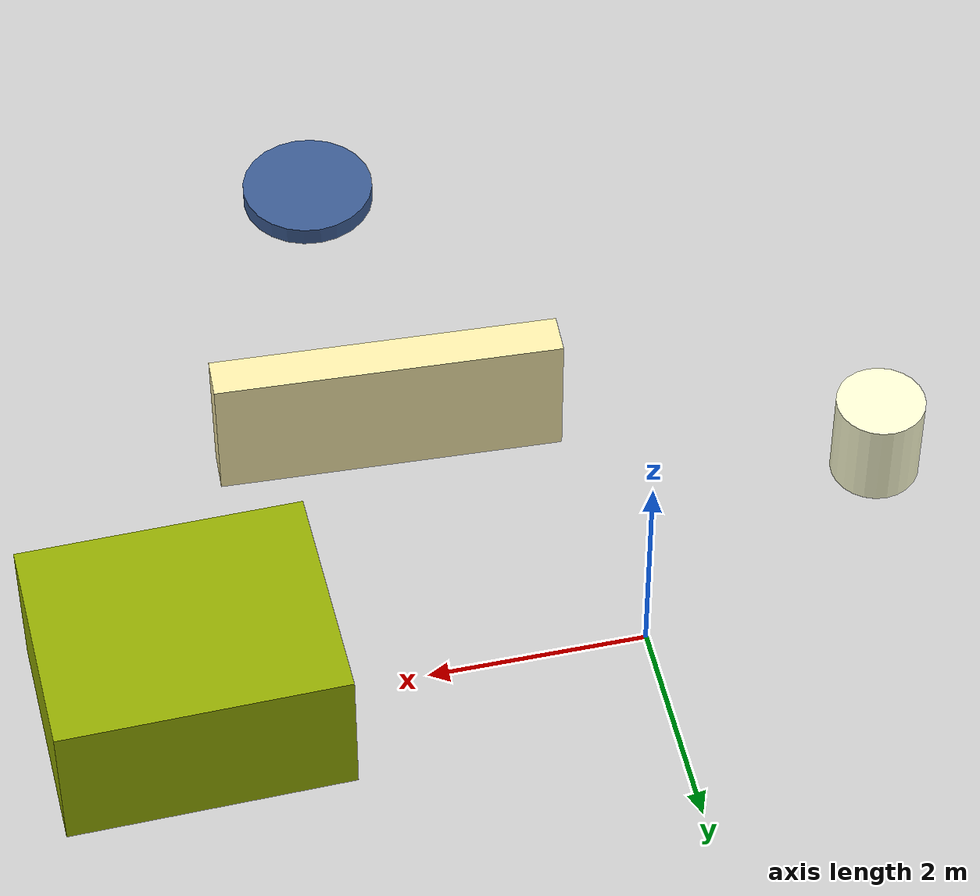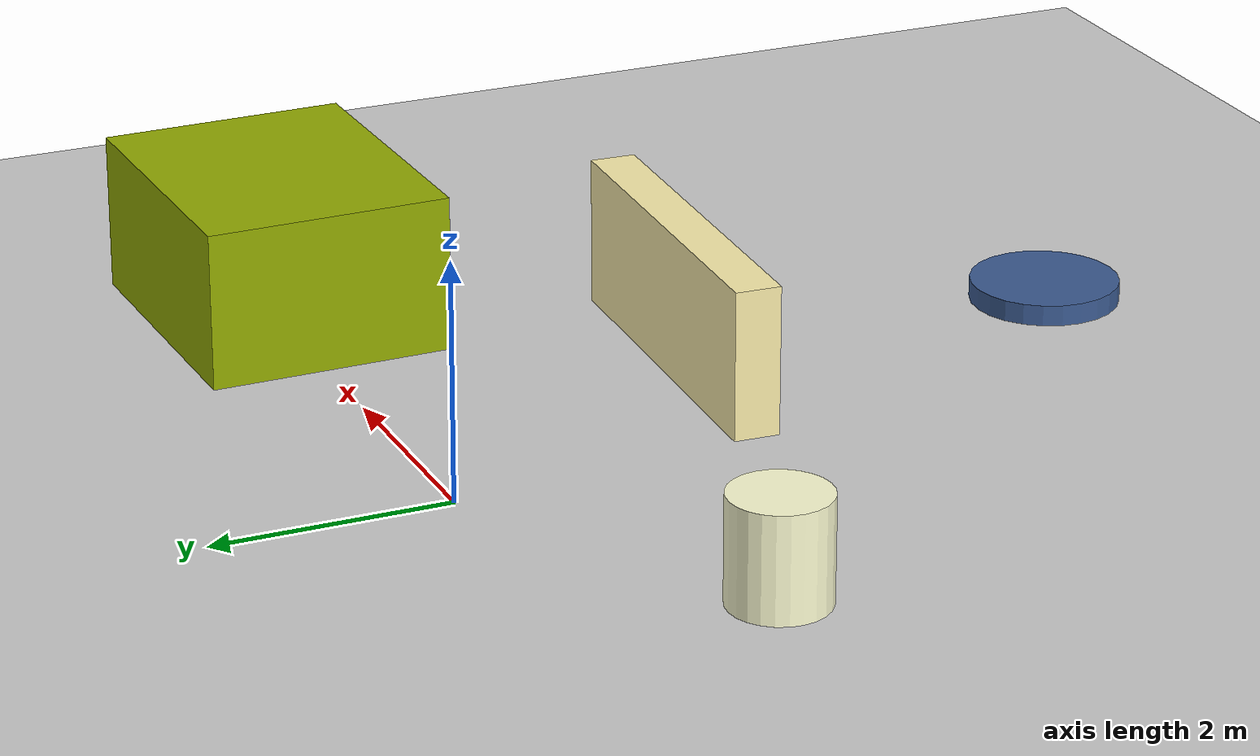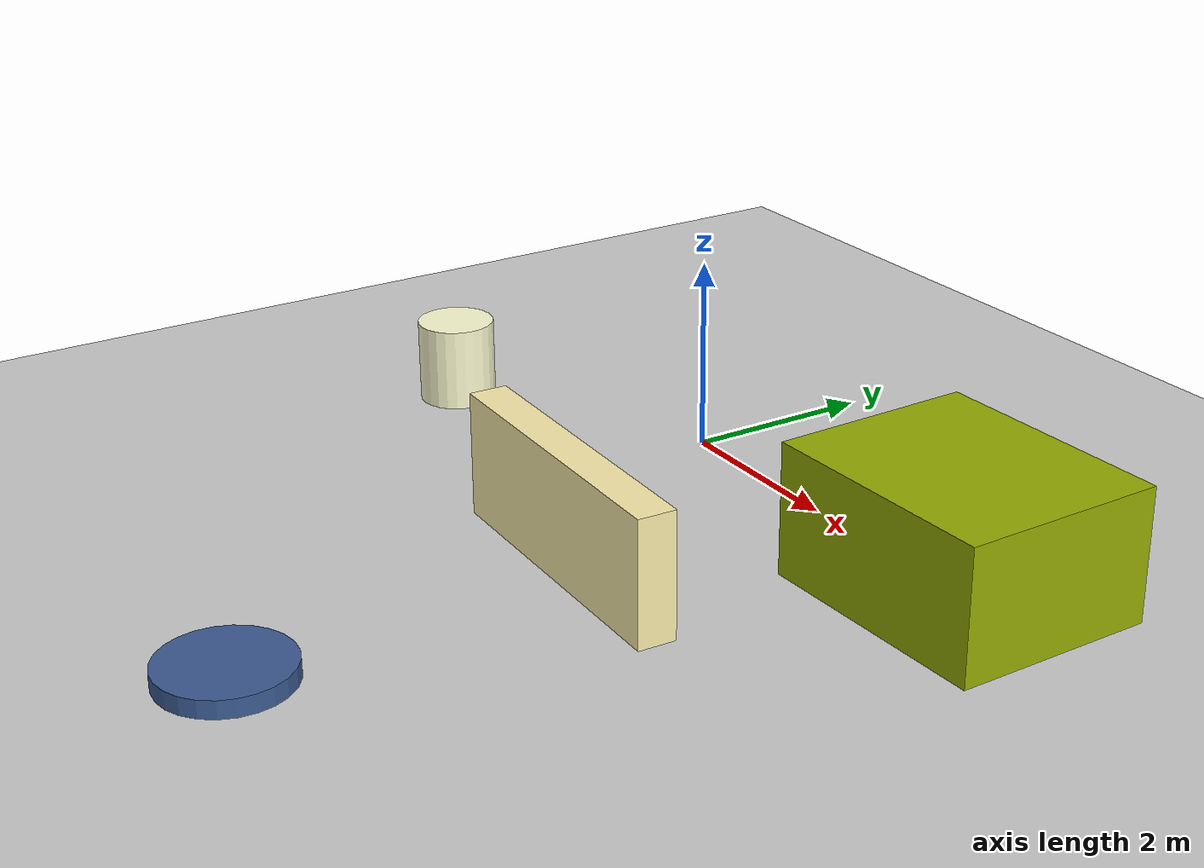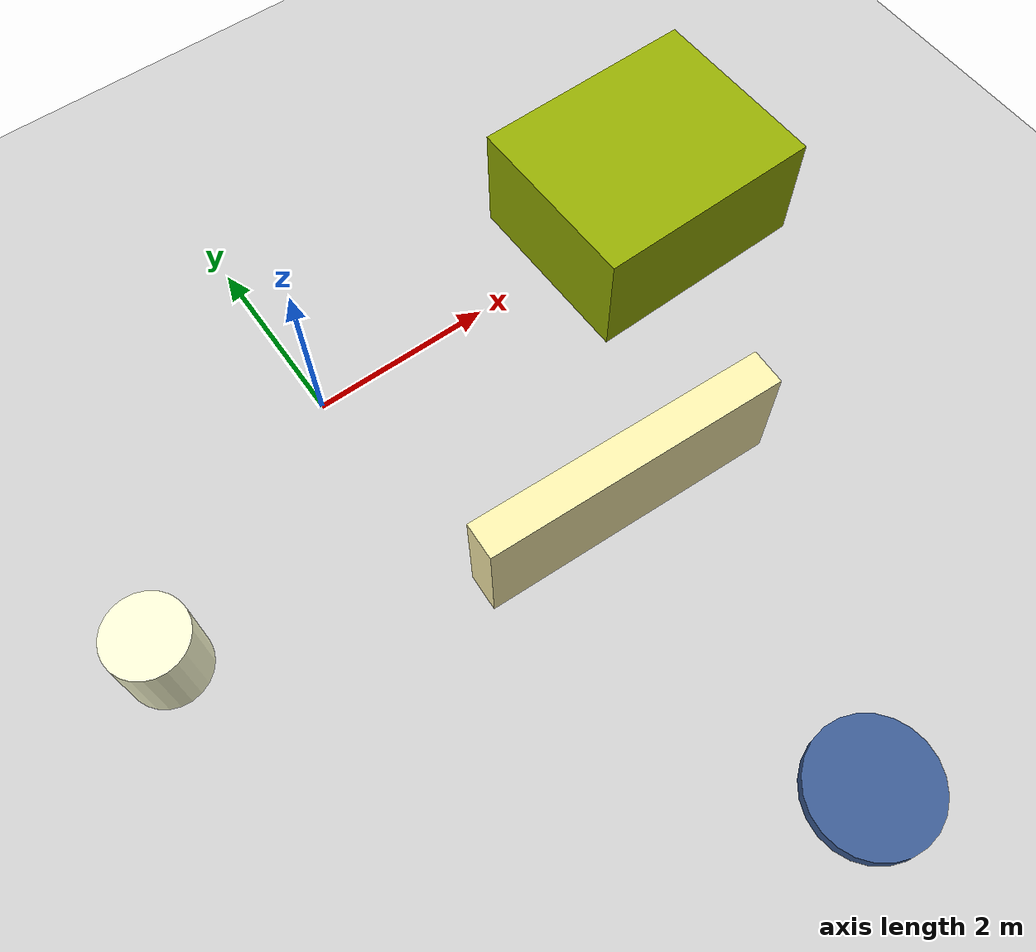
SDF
<sdf version="1.6">
 <world name="default">
  <atmosphere type="adiabatic"/>
  <wind><linear_velocity>0 0 0</linear_velocity></wind>
  <gravity>0 0 -9.8</gravity>
  <model name="static_cylinder">
   <pose>-2.5834 -1.53898 0.443668 0 -0 2.11117</pose>
   <static>1</static>
   <allow_auto_disable>0</allow_auto_disable>
   <link name="link">
    <collision name="collision">
     <geometry>
      <cylinder><radius>0.41374746275261365</radius><length>0.8873368733152909</length></cylinder>
     </geometry>
     <max_contacts>20</max_contacts>
    </collision>
    <visual name="visual">
     <geometry>
      <cylinder><radius>0.41374746275261365</radius><length>0.8873368733152909</length></cylinder>
     </geometry>
     <material><ambient>1 1 0.831373 1</ambient><diffuse>1.0 1.0 0.8313725490196079 1</diffuse></material>
     <transparency>0.0</transparency>
    </visual>
   </link>
  </model>
  <model name="static_cylinder_1">
   <pose>1.90024 -6.18633 0.0902866 0 -0 0.279727</pose>
   <static>1</static>
   <allow_auto_disable>0</allow_auto_disable>
   <link name="link">
    <collision name="collision">
     <geometry>
      <cylinder><radius>0.6428341222340863</radius><length>0.1805731601505487</length></cylinder>
     </geometry>
     <max_contacts>20</max_contacts>
    </collision>
    <visual name="visual">
     <geometry>
      <cylinder><radius>0.6428341222340863</radius><length>0.1805731601505487</length></cylinder>
     </geometry>
     <material>
      <ambient>0.231373 0.356863 0.572549 1</ambient>
      <diffuse>0.23137254901960785 0.3568627450980392 0.5725490196078431 1</diffuse>
     </material>
     <transparency>0.0</transparency>
    </visual>
   </link>
  </model>
  <model name="dyn_box">
   <pose>1.78987 -2.73143 0.636431 0 0 -1.61522</pose>
   <static>0</static>
   <allow_auto_disable>0</allow_auto_disable>
   <link name="link">
    <collision name="collision">
     <geometry><box><size>0.389059 3.21932 1.27286</size></box></geometry>
     <max_contacts>20</max_contacts>
    </collision>
    <visual name="visual">
     <geometry><box><size>0.389059 3.21932 1.27286</size></box></geometry>
     <material>
      <ambient>0.984314 0.933333 0.67451 1</ambient>
      <diffuse>0.984313725490196 0.9333333333333333 0.6745098039215687 1</diffuse>
     </material>
     <transparency>0.0</transparency>
    </visual>
    <inertial>
     <inertia>
      <ixx>0.29553975722098336</ixx>
      <iyy>0.04368780413980541</iyy>
      <izz>0.25931762518954066</izz>
      <ixy>0.0</ixy>
      <ixz>0.0</ixz>
      <iyz>0.0</iyz>
     </inertia>
     <mass>0.2959300542624286</mass>
    </inertial>
   </link>
  </model>
  <model name="dyn_box_1">
   <pose>4.1349 -0.0327248 0.67259 0 0 -1.55063</pose>
   <static>0</static>
   <allow_auto_disable>0</allow_auto_disable>
   <link name="link">
    <collision name="collision">
     <geometry><box><size>2.10452 2.56806 1.34518</size></box></geometry>
     <max_contacts>20</max_contacts>
    </collision>
    <visual name="visual">
     <geometry><box><size>2.10452 2.56806 1.34518</size></box></geometry>
     <material>
      <ambient>0.580392 0.67451 0.00784314 1</ambient>
      <diffuse>0.5803921568627451 0.6745098039215687 0.00784313725490196 1</diffuse>
     </material>
     <transparency>0.0</transparency>
    </visual>
    <inertial>
     <inertia>
      <ixx>0.45319779184846687</ixx>
      <iyy>0.3364035666868663</iyy>
      <izz>0.5944506450680117</izz>
      <ixy>0.0</ixy>
      <ixz>0.0</ixz>
      <iyz>0.0</iyz>
     </inertia>
     <mass>0.6470841999928039</mass>
    </inertial>
   </link>
  </model>
  <include><uri>model://ground_plane</uri><name>ground_plane</name><static>1</static></include>
  <include><uri>model://sun</uri></include>
  <physics name="default_physics" default="0" type="ode">
   <gravity>0 0 -9.8066</gravity>
   <ode>
    <solver>
     <type>quick</type>
     <iters>10</iters>
     <sor>1.3</sor>
     <use_dynamic_moi_rescaling>0</use_dynamic_moi_rescaling>
    </solver>
    <constraints>
     <cfm>0</cfm>
     <erp>0.2</erp>
     <contact_max_correcting_vel>100</contact_max_correcting_vel>
     <contact_surface_layer>0.001</contact_surface_layer>
    </constraints>
   </ode>
   <max_step_size>0.004</max_step_size>
   <real_time_factor>1</real_time_factor>
   <real_time_update_rate>250</real_time_update_rate>
   <magnetic_field>6.0e-6 2.3e-5 -4.2e-5</magnetic_field>
  </physics>
  <scene>
   <ambient>0.8 0.8 0.8 1</ambient>
   <background>0.8 0.9 1 1</background>
   <shadows>false</shadows>
   <grid>false</grid>
   <origin_visual>false</origin_visual>
  </scene>
 </world>
</sdf>
